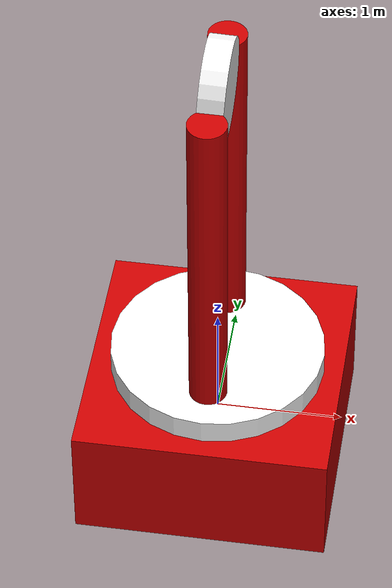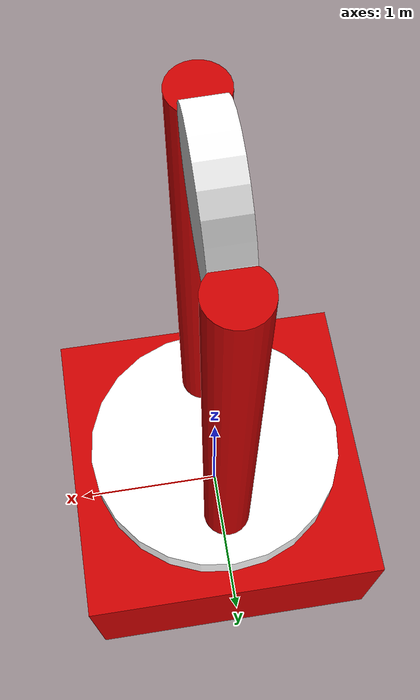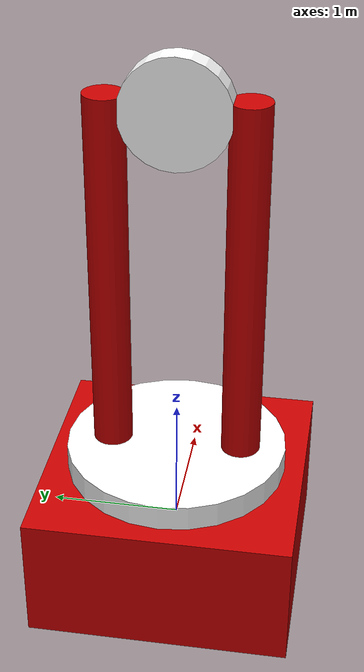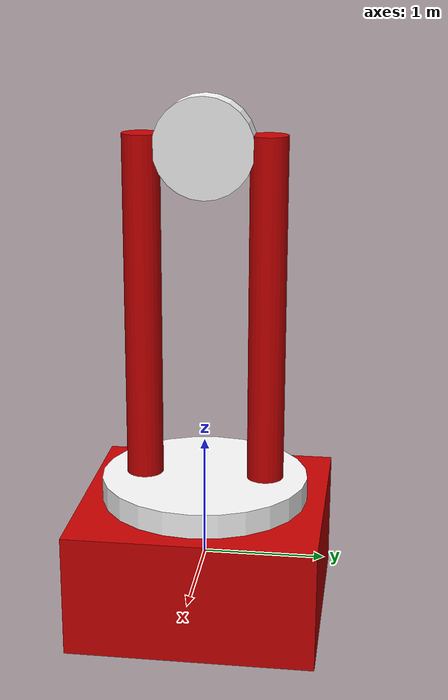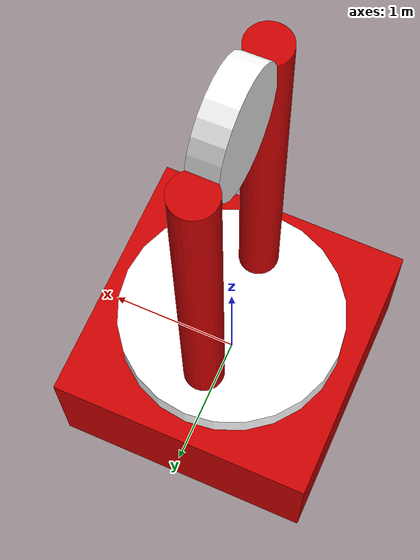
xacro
<?xml version="1.0"?>
<robot name="rrviz" xmlns:xacro="http://www.ros.org/wiki/xacro">

<!-- ...................Material Definitions........................ -->

 <material name="red">
	<color rgba="0.8 0.0 0.0 1.0"/>
 </material>

 <material name="white">
  	<color rgba="1.0 1.0 1.0 1.0"/>
 </material>

<!--.................... Constant Definitions........................-->
  <xacro:property name="deg" value="0.017453293"/>

<!---............................. Link Definitions ..................-->
  <link name="base_link">
    <visual>
        <geometry>
           <box size="2 2 1"/>
        </geometry>
        <material name ="red"/>
        <origin rpy="0 0 0" xyz="0 0 0"/>
    </visual>
  </link>

  <link name="link1">
    <visual>
        <geometry>
           <cylinder radius="0.85" length="0.4"/>
        </geometry>
        <material name ="white"/>
        <origin rpy="0 0 0" xyz="0 0 0"/>
    </visual>
  </link>

  <link name="link2">
    <visual>
        <geometry>
	   <cylinder length="3" radius="0.15"/>
	</geometry>
        <material name ="red"/>
        <origin rpy="0 0 0" xyz="0 -0.5 0"/>
    </visual>
 </link>

  <link name="link3">
    <visual>
        <geometry>
	   <cylinder length="3" radius="0.15"/>
	</geometry>
        <material name ="red"/>
        <origin rpy="0 0 0" xyz="0 0.5 0"/>
    </visual>
  </link>

  <link name="link4">
    <visual>
        <geometry>
           <cylinder radius="0.4" length="0.2"/>
        </geometry>
        <material name ="white"/>
        <origin rpy="0 1.6 0" xyz="0 0 0"/>
    </visual>
  </link>

<!--.......................Joint Definitions..........................-->

    <joint name="joint1" type="revolute">
        <parent link="base_link"/>
        <child link="link1"/>
        <axis xyz="0 0 1" />
        <limit effort="300.0" lower="${-180*deg}" upper="${180*deg}" velocity="${125*deg}"/>
        <origin xyz="0 0 0.5" rpy="0 0 0"/>
    </joint>

    <joint name="joint2" type="fixed">
        <parent link="link1"/>
        <child link="link2"/>
        <origin xyz="0 0 1.5" rpy="0 0 0"/>
    </joint>

    <joint name="joint3" type="fixed">
        <parent link="link1"/>
        <child link="link3"/>
        <origin xyz="0 0 1.5" rpy="0 0 0"/>
    </joint>

    <joint name="joint4" type="revolute">
        <parent link="link3"/>
        <child link="link4"/>
        <axis xyz="0 1 0" />
        <limit effort="300.0" lower="${-360*deg}" upper="${360*deg}" velocity="${172*deg}"/>
        <origin xyz="0 0 1.4" rpy="0 0 0"/>
    </joint>

</robot>
